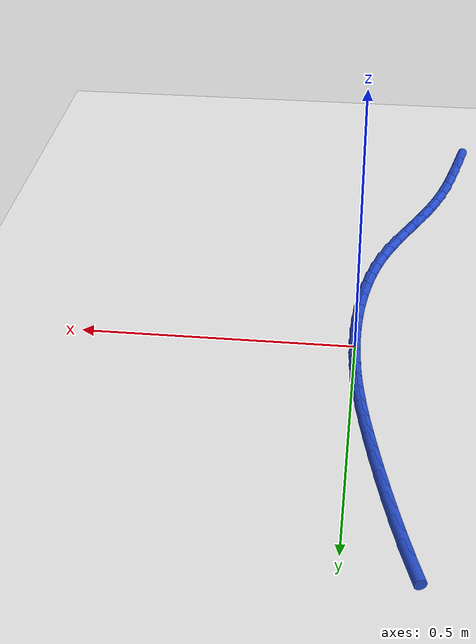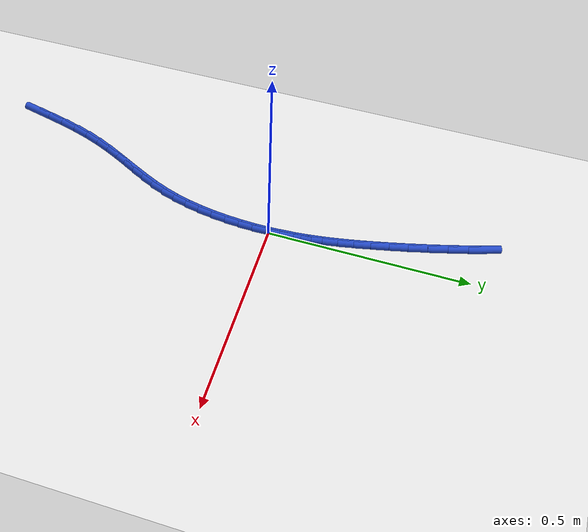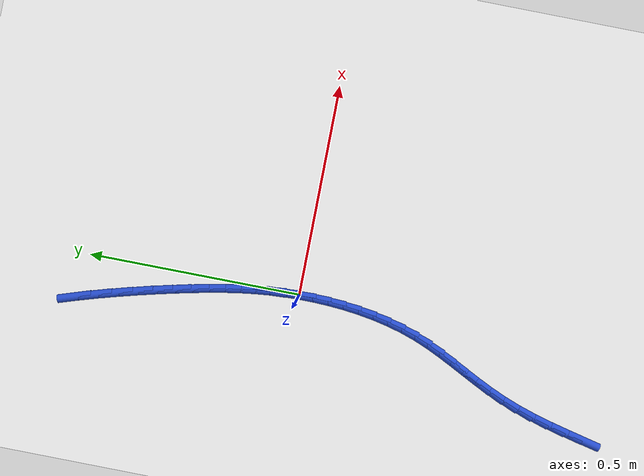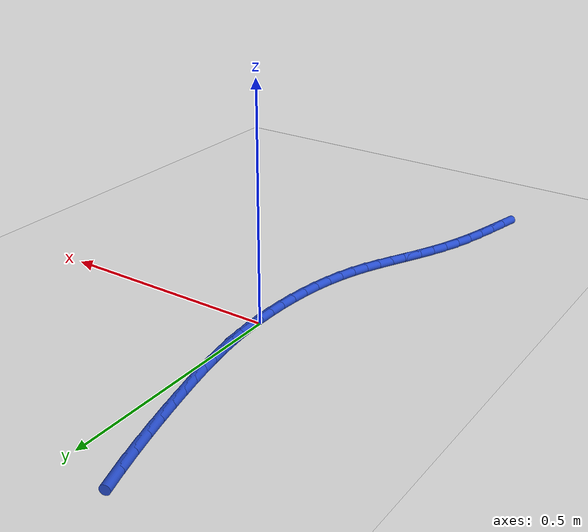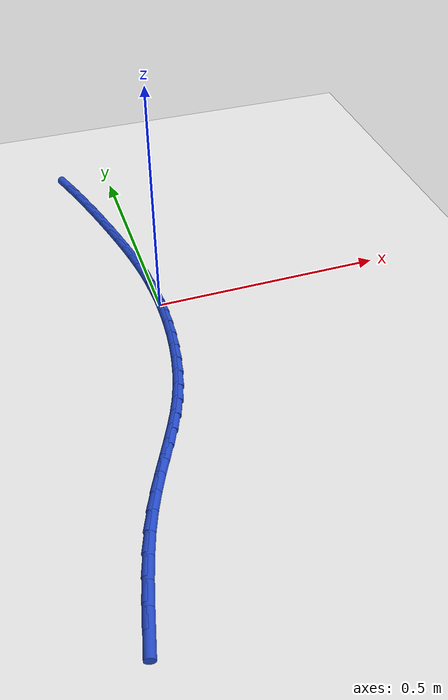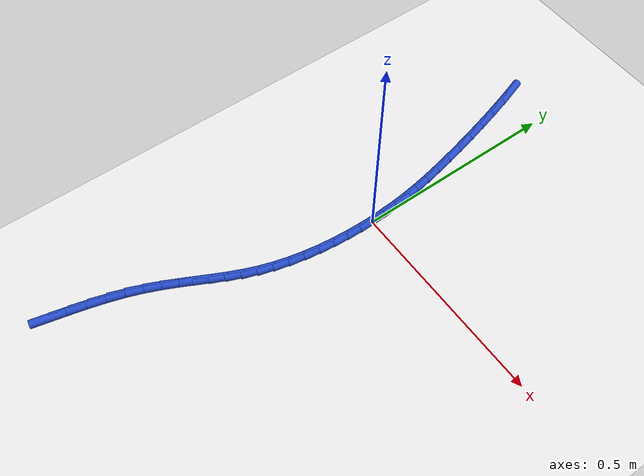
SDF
<sdf version="1.6">
 <world name="default">
  <model name="ground_plane">
   <static>1</static>
   <link name="link">
    <collision name="collision">
     <geometry><plane><normal>0 0 1</normal><size>100 100</size></plane></geometry>
     <surface><friction><ode><mu>100</mu><mu2>50</mu2></ode></friction></surface>
    </collision>
    <visual name="visual">
     <cast_shadows>0</cast_shadows>
     <geometry><plane><normal>0 0 1</normal><size>100 100</size></plane></geometry>
     <material>
      <script><uri>file://media/materials/scripts/gazebo.material</uri><name>Gazebo/WhiteGlow</name></script>
     </material>
    </visual>
   </link>
  </model>
  <model name="line">
   <link name="link_0">
    <pose>1.214306433183765e-17 6.245004513516506e-17 0.01 0 1.57 -1.5364172123056168</pose>
    <collision name="collision">
     <geometry><cylinder><radius>0.01</radius><length>0.08</length></cylinder></geometry>
    </collision>
    <visual name="visual">
     <material>
      <script><name>Gazebo/Blue</name><uri>file://media/materials/scripts/gazebo.material</uri></script>
     </material>
     <geometry><cylinder><radius>0.01</radius><length>0.08</length></cylinder></geometry>
    </visual>
   </link>
   <link name="link_1">
    <pose>-0.0011973013457162733 0.0348126942802152 0.01 0 1.57 -1.5012761629877742</pose>
    <collision name="collision">
     <geometry><cylinder><radius>0.01</radius><length>0.08</length></cylinder></geometry>
    </collision>
    <visual name="visual">
     <material>
      <script><name>Gazebo/Blue</name><uri>file://media/materials/scripts/gazebo.material</uri></script>
     </material>
     <geometry><cylinder><radius>0.01</radius><length>0.08</length></cylinder></geometry>
    </visual>
   </link>
   <link name="link_2">
    <pose>-0.003584825711390027 0.06910025419359601 0.01 0 1.57 -1.4670397695237476</pose>
    <collision name="collision">
     <geometry><cylinder><radius>0.01</radius><length>0.08</length></cylinder></geometry>
    </collision>
    <visual name="visual">
     <material>
      <script><name>Gazebo/Blue</name><uri>file://media/materials/scripts/gazebo.material</uri></script>
     </material>
     <geometry><cylinder><radius>0.01</radius><length>0.08</length></cylinder></geometry>
    </visual>
   </link>
   <link name="link_3">
    <pose>-0.007145196230467033 0.10329168396970194 0.01 0 1.57 -1.4350416926073262</pose>
    <collision name="collision">
     <geometry><cylinder><radius>0.01</radius><length>0.08</length></cylinder></geometry>
    </collision>
    <visual name="visual">
     <material>
      <script><name>Gazebo/Blue</name><uri>file://media/materials/scripts/gazebo.material</uri></script>
     </material>
     <geometry><cylinder><radius>0.01</radius><length>0.08</length></cylinder></geometry>
    </visual>
   </link>
   <link name="link_4">
    <pose>-0.011861036036393078 0.13781598783809249 0.01 0 1.57 -1.4063949400747409</pose>
    <collision name="collision">
     <geometry><cylinder><radius>0.01</radius><length>0.08</length></cylinder></geometry>
    </collision>
    <visual name="visual">
     <material>
      <script><name>Gazebo/Blue</name><uri>file://media/materials/scripts/gazebo.material</uri></script>
     </material>
     <geometry><cylinder><radius>0.01</radius><length>0.08</length></cylinder></geometry>
    </visual>
   </link>
   <link name="link_5">
    <pose>-0.017714968262613952 0.17310217002832703 0.01 0 1.57 -1.3818702839190338</pose>
    <collision name="collision">
     <geometry><cylinder><radius>0.01</radius><length>0.08</length></cylinder></geometry>
    </collision>
    <visual name="visual">
     <material>
      <script><name>Gazebo/Blue</name><uri>file://media/materials/scripts/gazebo.material</uri></script>
     </material>
     <geometry><cylinder><radius>0.01</radius><length>0.08</length></cylinder></geometry>
    </visual>
   </link>
   <link name="link_6">
    <pose>-0.024689616042575434 0.20957923476996512 0.01 0 1.57 -1.3618533897870633</pose>
    <collision name="collision">
     <geometry><cylinder><radius>0.01</radius><length>0.08</length></cylinder></geometry>
    </collision>
    <visual name="visual">
     <material>
      <script><name>Gazebo/Blue</name><uri>file://media/materials/scripts/gazebo.material</uri></script>
     </material>
     <geometry><cylinder><radius>0.01</radius><length>0.08</length></cylinder></geometry>
    </visual>
   </link>
   <link name="link_7">
    <pose>-0.03276760250972331 0.24767618629256619 0.01 0 1.57 -1.3463722413783226</pose>
    <collision name="collision">
     <geometry><cylinder><radius>0.01</radius><length>0.08</length></cylinder></geometry>
    </collision>
    <visual name="visual">
     <material>
      <script><name>Gazebo/Blue</name><uri>file://media/materials/scripts/gazebo.material</uri></script>
     </material>
     <geometry><cylinder><radius>0.01</radius><length>0.08</length></cylinder></geometry>
    </visual>
   </link>
   <link name="link_8">
    <pose>-0.04193155645691852 0.2878215377126944 0.01 0 1.57 -1.3339066279676435</pose>
    <collision name="collision">
     <geometry><cylinder><radius>0.01</radius><length>0.08</length></cylinder></geometry>
    </collision>
    <visual name="visual">
     <material>
      <script><name>Gazebo/Blue</name><uri>file://media/materials/scripts/gazebo.material</uri></script>
     </material>
     <geometry><cylinder><radius>0.01</radius><length>0.08</length></cylinder></geometry>
    </visual>
   </link>
   <link name="link_9">
    <pose>-0.05216672301584432 0.3302167613726171 0.01 0 1.57 -1.3208588870401436</pose>
    <collision name="collision">
     <geometry><cylinder><radius>0.01</radius><length>0.08</length></cylinder></geometry>
    </collision>
    <visual name="visual">
     <material>
      <script><name>Gazebo/Blue</name><uri>file://media/materials/scripts/gazebo.material</uri></script>
     </material>
     <geometry><cylinder><radius>0.01</radius><length>0.08</length></cylinder></geometry>
    </visual>
   </link>
   <link name="link_10">
    <pose>-0.06346511105945914 0.37447638535374156 0.01 0 1.57 -1.3064606607210427</pose>
    <collision name="collision">
     <geometry><cylinder><radius>0.01</radius><length>0.08</length></cylinder></geometry>
    </collision>
    <visual name="visual">
     <material>
      <script><name>Gazebo/Blue</name><uri>file://media/materials/scripts/gazebo.material</uri></script>
     </material>
     <geometry><cylinder><radius>0.01</radius><length>0.08</length></cylinder></geometry>
    </visual>
   </link>
   <link name="link_11">
    <pose>-0.07581980790520755 0.42012135243075 0.01 0 1.57 -1.290437660495635</pose>
    <collision name="collision">
     <geometry><cylinder><radius>0.01</radius><length>0.08</length></cylinder></geometry>
    </collision>
    <visual name="visual">
     <material>
      <script><name>Gazebo/Blue</name><uri>file://media/materials/scripts/gazebo.material</uri></script>
     </material>
     <geometry><cylinder><radius>0.01</radius><length>0.08</length></cylinder></geometry>
    </visual>
   </link>
   <link name="link_12">
    <pose>-0.08922390087053418 0.46667260537832467 0.01 0 1.57 -1.2724595972651556</pose>
    <collision name="collision">
     <geometry><cylinder><radius>0.01</radius><length>0.08</length></cylinder></geometry>
    </collision>
    <visual name="visual">
     <material>
      <script><name>Gazebo/Blue</name><uri>file://media/materials/scripts/gazebo.material</uri></script>
     </material>
     <geometry><cylinder><radius>0.01</radius><length>0.08</length></cylinder></geometry>
    </visual>
   </link>
   <link name="link_13">
    <pose>-0.10367047727288366 0.5136510869711479 0.01 0 1.57 -1.2521188784909092</pose>
    <collision name="collision">
     <geometry><cylinder><radius>0.01</radius><length>0.08</length></cylinder></geometry>
    </collision>
    <visual name="visual">
     <material>
      <script><name>Gazebo/Blue</name><uri>file://media/materials/scripts/gazebo.material</uri></script>
     </material>
     <geometry><cylinder><radius>0.01</radius><length>0.08</length></cylinder></geometry>
    </visual>
   </link>
   <link name="link_200">
    <pose>-0.206456802288359 -0.7167250928451948 0.01 0 1.57 1.3448237359016175</pose>
    <collision name="collision">
     <geometry><cylinder><radius>0.01</radius><length>0.08</length></cylinder></geometry>
    </collision>
    <visual name="visual">
     <material>
      <script><name>Gazebo/Blue</name><uri>file://media/materials/scripts/gazebo.material</uri></script>
     </material>
     <geometry><cylinder><radius>0.01</radius><length>0.08</length></cylinder></geometry>
    </visual>
   </link>
   <link name="link_201">
    <pose>-0.19665667190888156 -0.6740971365684815 0.01 0 1.57 1.3294189409047434</pose>
    <collision name="collision">
     <geometry><cylinder><radius>0.01</radius><length>0.08</length></cylinder></geometry>
    </collision>
    <visual name="visual">
     <material>
      <script><name>Gazebo/Blue</name><uri>file://media/materials/scripts/gazebo.material</uri></script>
     </material>
     <geometry><cylinder><radius>0.01</radius><length>0.08</length></cylinder></geometry>
    </visual>
   </link>
   <link name="link_202">
    <pose>-0.1863007270069554 -0.6320300790039107 0.01 0 1.57 1.3032825821010532</pose>
    <collision name="collision">
     <geometry><cylinder><radius>0.01</radius><length>0.08</length></cylinder></geometry>
    </collision>
    <visual name="visual">
     <material>
      <script><name>Gazebo/Blue</name><uri>file://media/materials/scripts/gazebo.material</uri></script>
     </material>
     <geometry><cylinder><radius>0.01</radius><length>0.08</length></cylinder></geometry>
    </visual>
   </link>
   <link name="link_203">
    <pose>-0.17508028211553803 -0.5910919930972837 0.01 0 1.57 1.2648775393825162</pose>
    <collision name="collision">
     <geometry><cylinder><radius>0.01</radius><length>0.08</length></cylinder></geometry>
    </collision>
    <visual name="visual">
     <material>
      <script><name>Gazebo/Blue</name><uri>file://media/materials/scripts/gazebo.material</uri></script>
     </material>
     <geometry><cylinder><radius>0.01</radius><length>0.08</length></cylinder></geometry>
    </visual>
   </link>
   <link name="link_204">
    <pose>-0.1626866517675882 -0.5518509517944046 0.01 0 1.57 1.2133937927463536</pose>
    <collision name="collision">
     <geometry><cylinder><radius>0.01</radius><length>0.08</length></cylinder></geometry>
    </collision>
    <visual name="visual">
     <material>
      <script><name>Gazebo/Blue</name><uri>file://media/materials/scripts/gazebo.material</uri></script>
     </material>
     <geometry><cylinder><radius>0.01</radius><length>0.08</length></cylinder></geometry>
    </visual>
   </link>
   <link name="link_205">
    <pose>-0.14885541800328905 -0.5148136129821248 0.01 0 1.57 1.1634218268278345</pose>
    <collision name="collision">
     <geometry><cylinder><radius>0.01</radius><length>0.08</length></cylinder></geometry>
    </collision>
    <visual name="visual">
     <material>
      <script><name>Gazebo/Blue</name><uri>file://media/materials/scripts/gazebo.material</uri></script>
     </material>
     <geometry><cylinder><radius>0.01</radius><length>0.08</length></cylinder></geometry>
    </visual>
   </link>
   <link name="link_206">
    <pose>-0.1337729813707883 -0.4798611860642612 0.01 0 1.57 1.1263175260070473</pose>
    <collision name="collision">
     <geometry><cylinder><radius>0.01</radius><length>0.08</length></cylinder></geometry>
    </collision>
    <visual name="visual">
     <material>
      <script><name>Gazebo/Blue</name><uri>file://media/materials/scripts/gazebo.material</uri></script>
     </material>
     <geometry><cylinder><radius>0.01</radius><length>0.08</length></cylinder></geometry>
    </visual>
   </link>
   <link name="link_207">
    <pose>-0.11788891440901944 -0.44650976561569783 0.01 0 1.57 1.1043390733294678</pose>
    <collision name="collision">
     <geometry><cylinder><radius>0.01</radius><length>0.08</length></cylinder></geometry>
    </collision>
    <visual name="visual">
     <material>
      <script><name>Gazebo/Blue</name><uri>file://media/materials/scripts/gazebo.material</uri></script>
     </material>
     <geometry><cylinder><radius>0.01</radius><length>0.08</length></cylinder></geometry>
    </visual>
   </link>
   <link name="link_208">
    <pose>-0.1016560846636962 -0.4142708748440071 0.01 0 1.57 1.0990513011636769</pose>
    <collision name="collision">
     <geometry><cylinder><radius>0.01</radius><length>0.08</length></cylinder></geometry>
    </collision>
    <visual name="visual">
     <material>
      <script><name>Gazebo/Blue</name><uri>file://media/materials/scripts/gazebo.material</uri></script>
     </material>
     <geometry><cylinder><radius>0.01</radius><length>0.08</length></cylinder></geometry>
    </visual>
   </link>
   <link name="link_209">
    <pose>-0.0855273596805313 -0.3826560369567598 0.01 0 1.57 1.1114241949064356</pose>
    <collision name="collision">
     <geometry><cylinder><radius>0.01</radius><length>0.08</length></cylinder></geometry>
    </collision>
    <visual name="visual">
     <material>
      <script><name>Gazebo/Blue</name><uri>file://media/materials/scripts/gazebo.material</uri></script>
     </material>
     <geometry><cylinder><radius>0.01</radius><length>0.08</length></cylinder></geometry>
    </visual>
   </link>
   <link name="link_210">
    <pose>-0.06995560700523769 -0.35117677516152684 0.01 0 1.57 1.1417567415135292</pose>
    <collision name="collision">
     <geometry><cylinder><radius>0.01</radius><length>0.08</length></cylinder></geometry>
    </collision>
    <visual name="visual">
     <material>
      <script><name>Gazebo/Blue</name><uri>file://media/materials/scripts/gazebo.material</uri></script>
     </material>
     <geometry><cylinder><radius>0.01</radius><length>0.08</length></cylinder></geometry>
    </visual>
   </link>
   <link name="link_211">
    <pose>-0.055393694183528415 -0.31934461266587943 0.01 0 1.57 1.1895042232475264</pose>
    <collision name="collision">
     <geometry><cylinder><radius>0.01</radius><length>0.08</length></cylinder></geometry>
    </collision>
    <visual name="visual">
     <material>
      <script><name>Gazebo/Blue</name><uri>file://media/materials/scripts/gazebo.material</uri></script>
     </material>
     <geometry><cylinder><radius>0.01</radius><length>0.08</length></cylinder></geometry>
    </visual>
   </link>
   <link name="link_212">
    <pose>-0.04229448876111617 -0.286671072677388 0.01 0 1.57 1.2508217387247589</pose>
    <collision name="collision">
     <geometry><cylinder><radius>0.01</radius><length>0.08</length></cylinder></geometry>
    </collision>
    <visual name="visual">
     <material>
      <script><name>Gazebo/Blue</name><uri>file://media/materials/scripts/gazebo.material</uri></script>
     </material>
     <geometry><cylinder><radius>0.01</radius><length>0.08</length></cylinder></geometry>
    </visual>
   </link>
   <link name="link_213">
    <pose>-0.031054012984720505 -0.2527489487814373 0.01 0 1.57 1.3104409537312447</pose>
    <collision name="collision">
     <geometry><cylinder><radius>0.01</radius><length>0.08</length></cylinder></geometry>
    </collision>
    <visual name="visual">
     <material>
      <script><name>Gazebo/Blue</name><uri>file://media/materials/scripts/gazebo.material</uri></script>
     </material>
     <geometry><cylinder><radius>0.01</radius><length>0.08</length></cylinder></geometry>
    </visual>
   </link>
   <link name="link_214">
    <pose>-0.021711769224498887 -0.21768074258814268 0.01 0 1.57 1.3637948773229531</pose>
    <collision name="collision">
     <geometry><cylinder><radius>0.01</radius><length>0.08</length></cylinder></geometry>
    </collision>
    <visual name="visual">
     <material>
      <script><name>Gazebo/Blue</name><uri>file://media/materials/scripts/gazebo.material</uri></script>
     </material>
     <geometry><cylinder><radius>0.01</radius><length>0.08</length></cylinder></geometry>
    </visual>
   </link>
   <link name="link_215">
    <pose>-0.014169351442223161 -0.18176612009326543 0.01 0 1.57 1.411939309536046</pose>
    <collision name="collision">
     <geometry><cylinder><radius>0.01</radius><length>0.08</length></cylinder></geometry>
    </collision>
    <visual name="visual">
     <material>
      <script><name>Gazebo/Blue</name><uri>file://media/materials/scripts/gazebo.material</uri></script>
     </material>
     <geometry><cylinder><radius>0.01</radius><length>0.08</length></cylinder></geometry>
    </visual>
   </link>
   <link name="link_216">
    <pose>-0.008328055289320839 -0.14530517377980073 0.01 0 1.57 1.4558273654411293</pose>
    <collision name="collision">
     <geometry><cylinder><radius>0.01</radius><length>0.08</length></cylinder></geometry>
    </collision>
    <visual name="visual">
     <material>
      <script><name>Gazebo/Blue</name><uri>file://media/materials/scripts/gazebo.material</uri></script>
     </material>
     <geometry><cylinder><radius>0.01</radius><length>0.08</length></cylinder></geometry>
    </visual>
   </link>
   <link name="link_217">
    <pose>-0.004089176417219823 -0.10859799613074633 0.01 0 1.57 1.4963117741825576</pose>
    <collision name="collision">
     <geometry><cylinder><radius>0.01</radius><length>0.08</length></cylinder></geometry>
    </collision>
    <visual name="visual">
     <material>
      <script><name>Gazebo/Blue</name><uri>file://media/materials/scripts/gazebo.material</uri></script>
     </material>
     <geometry><cylinder><radius>0.01</radius><length>0.08</length></cylinder></geometry>
    </visual>
   </link>
   <link name="link_218">
    <pose>-0.0013540104773475882 -0.07194467962909754 0.01 0 1.57 1.5341686188586627</pose>
    <collision name="collision">
     <geometry><cylinder><radius>0.01</radius><length>0.08</length></cylinder></geometry>
    </collision>
    <visual name="visual">
     <material>
      <script><name>Gazebo/Blue</name><uri>file://media/materials/scripts/gazebo.material</uri></script>
     </material>
     <geometry><cylinder><radius>0.01</radius><length>0.08</length></cylinder></geometry>
    </visual>
   </link>
   <link name="link_219">
    <pose>-2.3853121131763803e-05 -0.035645316757850376 0.01 0 1.57 1.5701271472296447</pose>
    <collision name="collision">
     <geometry><cylinder><radius>0.01</radius><length>0.08</length></cylinder></geometry>
    </collision>
    <visual name="visual">
     <material>
      <script><name>Gazebo/Blue</name><uri>file://media/materials/scripts/gazebo.material</uri></script>
     </material>
     <geometry><cylinder><radius>0.01</radius><length>0.08</length></cylinder></geometry>
    </visual>
   </link>
   <link name="link_220">
    <pose>9.540979117872439e-18 -6.245004513516506e-17 0.01 0 1.57 -1.5366871462711265</pose>
    <collision name="collision">
     <geometry><cylinder><radius>0.01</radius><length>0.08</length></cylinder></geometry>
    </collision>
    <visual name="visual">
     <material>
      <script><name>Gazebo/Blue</name><uri>file://media/materials/scripts/gazebo.material</uri></script>
     </material>
     <geometry><cylinder><radius>0.01</radius><length>0.08</length></cylinder></geometry>
    </visual>
   </link>
   <link name="link_221">
    <pose>-0.0011837467653798596 0.034691178161454776 0.01 0 1.57 -1.5023373377908562</pose>
    <collision name="collision">
     <geometry><cylinder><radius>0.01</radius><length>0.08</length></cylinder></geometry>
    </collision>
    <visual name="visual">
     <material>
      <script><name>Gazebo/Blue</name><uri>file://media/materials/scripts/gazebo.material</uri></script>
     </material>
     <geometry><cylinder><radius>0.01</radius><length>0.08</length></cylinder></geometry>
    </visual>
   </link>
   <link name="link_222">
    <pose>-0.003476389068699113 0.06812812524352144 0.01 0 1.57 -1.519813322149391</pose>
    <collision name="collision">
     <geometry><cylinder><radius>0.01</radius><length>0.08</length></cylinder></geometry>
    </collision>
    <visual name="visual">
     <material>
      <script><name>Gazebo/Blue</name><uri>file://media/materials/scripts/gazebo.material</uri></script>
     </material>
     <geometry><cylinder><radius>0.01</radius><length>0.08</length></cylinder></geometry>
    </visual>
   </link>
  </model>
 </world>
</sdf>
